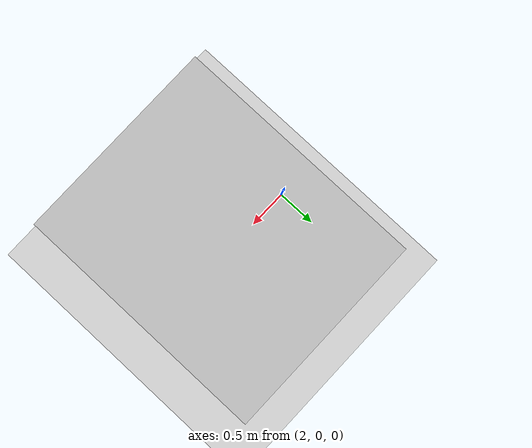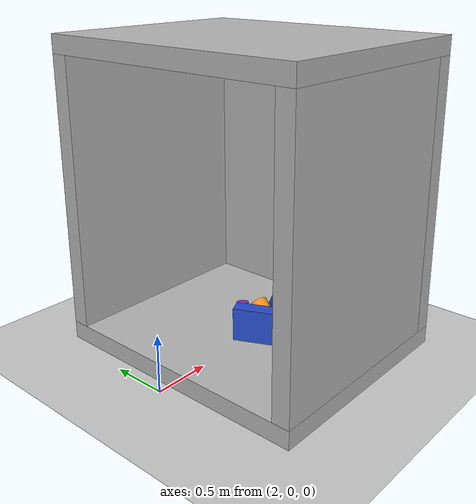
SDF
<sdf version="1.6">
 <world name="default">
  <light name="sun" type="directional">
   <pose>0 0 10 0 -0 0</pose>
   <diffuse>0.8 0.8 0.8 1</diffuse>
   <specular>0.1 0.1 0.1 1</specular>
   <attenuation>
    <range>1000</range>
    <constant>0.9</constant>
    <linear>0.01</linear>
    <quadratic>0.001</quadratic>
   </attenuation>
   <direction>-0.5 0.5 -1</direction>
  </light>
  <model name="ground_plane">
   <static>1</static>
   <link name="link">
    <collision name="collision">
     <geometry><plane><normal>0 0 1</normal><size>100 100</size></plane></geometry>
     <surface><friction><ode><mu>100</mu><mu2>50</mu2></ode></friction></surface>
    </collision>
    <visual name="visual">
     <cast_shadows>0</cast_shadows>
     <geometry><plane><normal>0 0 1</normal><size>100 100</size></plane></geometry>
     <material>
      <script><uri>file://media/materials/scripts/gazebo.material</uri><name>Gazebo/Grey</name></script>
     </material>
    </visual>
   </link>
  </model>
  <physics name="default_physics" default="0" type="ode">
   <real_time_update_rate>0</real_time_update_rate>
   <max_step_size>0.001</max_step_size>
   <real_time_factor>1</real_time_factor>
  </physics>
  <gravity>0 0 -9.8</gravity>
  <magnetic_field>6e-06 2.3e-05 -4.2e-05</magnetic_field>
  <atmosphere type="adiabatic"/>
  <scene><ambient>0.4 0.4 0.4 1</ambient><background>0.7 0.7 0.7 1</background><shadows>1</shadows></scene>
  <spherical_coordinates>
   <surface_model>EARTH_WGS84</surface_model>
   <latitude_deg>0</latitude_deg>
   <longitude_deg>0</longitude_deg>
   <elevation>0</elevation>
   <heading_deg>0</heading_deg>
  </spherical_coordinates>
  <model name="container">
   <link name="container">
    <inertial>
     <pose>0.22439 0 1.64098 0 -0 0</pose>
     <mass>205</mass>
     <inertia>
      <ixx>329.883</ixx>
      <ixy>1.59439e-15</ixy>
      <ixz>12.9249</ixz>
      <iyy>229.817</iyy>
      <iyz>1.16598e-14</iyz>
      <izz>267.609</izz>
     </inertia>
    </inertial>
    <collision name="container_back_collision">
     <pose>0.92 0 1.36 0 -0 0</pose>
     <geometry><box><size>0.16 2.45 2.4</size></box></geometry>
    </collision>
    <collision name="container_bottom_collision_1">
     <pose>0 0 0.08 0 -0 0</pose>
     <geometry><box><size>2 2.45 0.16</size></box></geometry>
    </collision>
    <collision name="container_left_collision_2">
     <pose>0 1.145 1.36 0 -0 0</pose>
     <geometry><box><size>2 0.16 2.4</size></box></geometry>
    </collision>
    <collision name="container_right_collision_3">
     <pose>0 -1.145 1.36 0 -0 0</pose>
     <geometry><box><size>2 0.16 2.4</size></box></geometry>
    </collision>
    <collision name="container_top_collision_4">
     <pose>0 0 2.64 0 -0 0</pose>
     <geometry><box><size>2 2.45 0.16</size></box></geometry>
    </collision>
    <visual name="container_back_visual">
     <pose>0.92 0 1.36 0 -0 0</pose>
     <geometry><box><size>0.16 2.45 2.4</size></box></geometry>
    </visual>
    <visual name="container_bottom_visual_1">
     <pose>0 0 0.08 0 -0 0</pose>
     <geometry><box><size>2 2.45 0.16</size></box></geometry>
    </visual>
    <visual name="container_left_visual_2">
     <pose>0 1.145 1.36 0 -0 0</pose>
     <geometry><box><size>2 0.16 2.4</size></box></geometry>
    </visual>
    <visual name="container_right_visual_3">
     <pose>0 -1.145 1.36 0 -0 0</pose>
     <geometry><box><size>2 0.16 2.4</size></box></geometry>
    </visual>
    <visual name="container_top_visual_4">
     <pose>0 0 2.64 0 -0 0</pose>
     <geometry><box><size>2 2.45 0.16</size></box></geometry>
    </visual>
   </link>
   <pose>3.10044 0.000488 -0 0 0 -0.000165</pose>
  </model>
  <model name="roblog-dhl-box-blue-simple-0-1080">
   <link name="link">
    <inertial>
     <mass>0.25</mass>
     <inertia>
      <ixx>0.00218083</ixx>
      <ixy>0</ixy>
      <ixz>0</ixz>
      <iyy>0.00473308</iyy>
      <iyz>0</iyz>
      <izz>0.00321375</izz>
     </inertia>
    </inertial>
    <collision name="link_collision"><geometry><box><size>0.372 0.126 0.298</size></box></geometry></collision>
    <visual name="link_visual">
     <geometry><box><size>0.372 0.126 0.298</size></box></geometry>
     <material>
      <script><name>Gazebo/Blue</name><uri>file://media/materials/scripts/gazebo.material</uri></script>
     </material>
    </visual>
   </link>
   <pose>3.33238 -0.218496 0.399905 -0.502156 -0.222837 -2.25695</pose>
  </model>
  <model name="roblog-dhl-box-blue-simple-1-1081">
   <link name="link">
    <inertial>
     <mass>0.25</mass>
     <inertia>
      <ixx>0.00218083</ixx>
      <ixy>0</ixy>
      <ixz>0</ixz>
      <iyy>0.00473308</iyy>
      <iyz>0</iyz>
      <izz>0.00321375</izz>
     </inertia>
    </inertial>
    <collision name="link_collision"><geometry><box><size>0.372 0.126 0.298</size></box></geometry></collision>
    <visual name="link_visual">
     <geometry><box><size>0.372 0.126 0.298</size></box></geometry>
     <material>
      <script><name>Gazebo/Blue</name><uri>file://media/materials/scripts/gazebo.material</uri></script>
     </material>
    </visual>
   </link>
   <pose>2.91787 -0.22426 0.309739 0.011891 0 -1.13548</pose>
  </model>
  <model name="roblog-vanish-detergent-simple-2-1082">
   <link name="link">
    <inertial>
     <mass>0.08</mass>
     <inertia>
      <ixx>0.000324987</ixx>
      <ixy>0</ixy>
      <ixz>0</ixz>
      <iyy>0.000324987</iyy>
      <iyz>0</iyz>
      <izz>0.00011664</izz>
     </inertia>
    </inertial>
    <collision name="link_collision">
     <geometry><cylinder><length>0.2</length><radius>0.054</radius></cylinder></geometry>
    </collision>
    <visual name="link_visual">
     <geometry><cylinder><length>0.2</length><radius>0.054</radius></cylinder></geometry>
     <material>
      <script><name>Gazebo/PurpleGlow</name><uri>file://media/materials/scripts/gazebo.material</uri></script>
     </material>
    </visual>
    <velocity_decay><linear>0.005</linear><angular>0.005</angular></velocity_decay>
   </link>
   <pose>3.06084 0.049685 0.266309 -0.132211 0.021803 -0.397435</pose>
  </model>
  <model name="roblog-maisels-barrel-simple-3-1083">
   <link name="link">
    <inertial>
     <mass>0.54</mass>
     <inertia>
      <ixx>0.00354312</ixx>
      <ixy>0</ixy>
      <ixz>0</ixz>
      <iyy>0.00354312</iyy>
      <iyz>0</iyz>
      <izz>0.00181548</izz>
     </inertia>
    </inertial>
    <collision name="link_collision">
     <geometry><cylinder><length>0.242</length><radius>0.082</radius></cylinder></geometry>
    </collision>
    <visual name="link_visual">
     <geometry><cylinder><length>0.242</length><radius>0.082</radius></cylinder></geometry>
     <material>
      <script><name>Gazebo/Orange</name><uri>file://media/materials/scripts/gazebo.material</uri></script>
     </material>
    </visual>
    <velocity_decay><linear>0.005</linear><angular>0.005</angular></velocity_decay>
   </link>
   <pose>3.11951 -0.147811 0.299167 -0.900553 -0.121058 -0.351931</pose>
  </model>
 </world>
</sdf>
